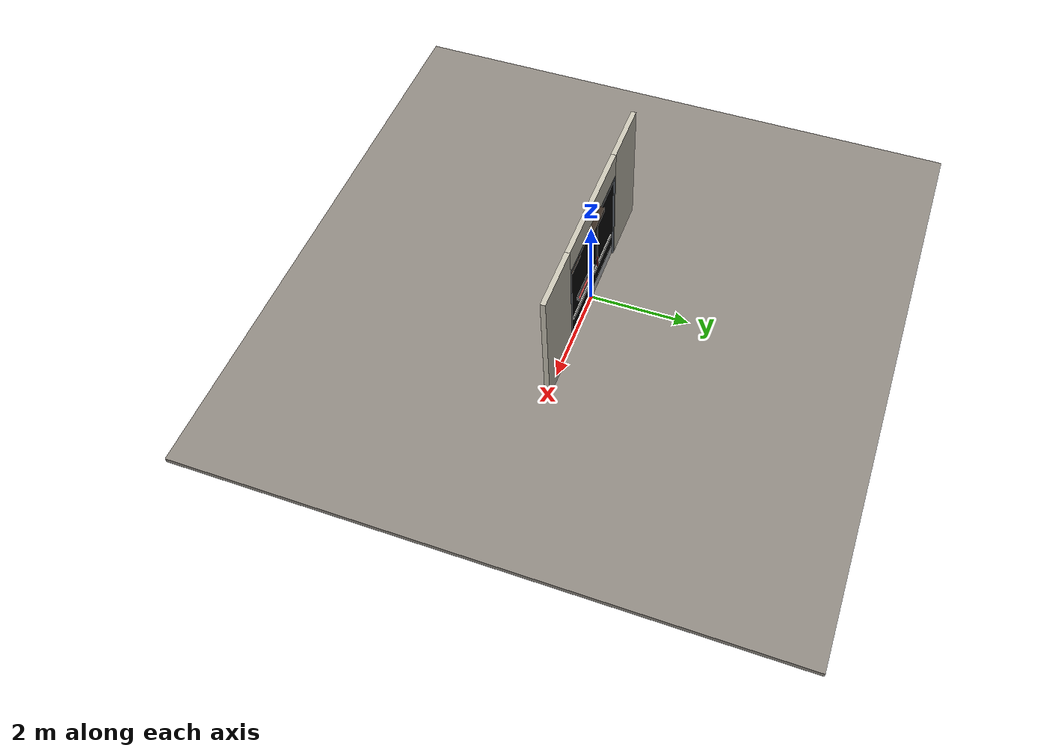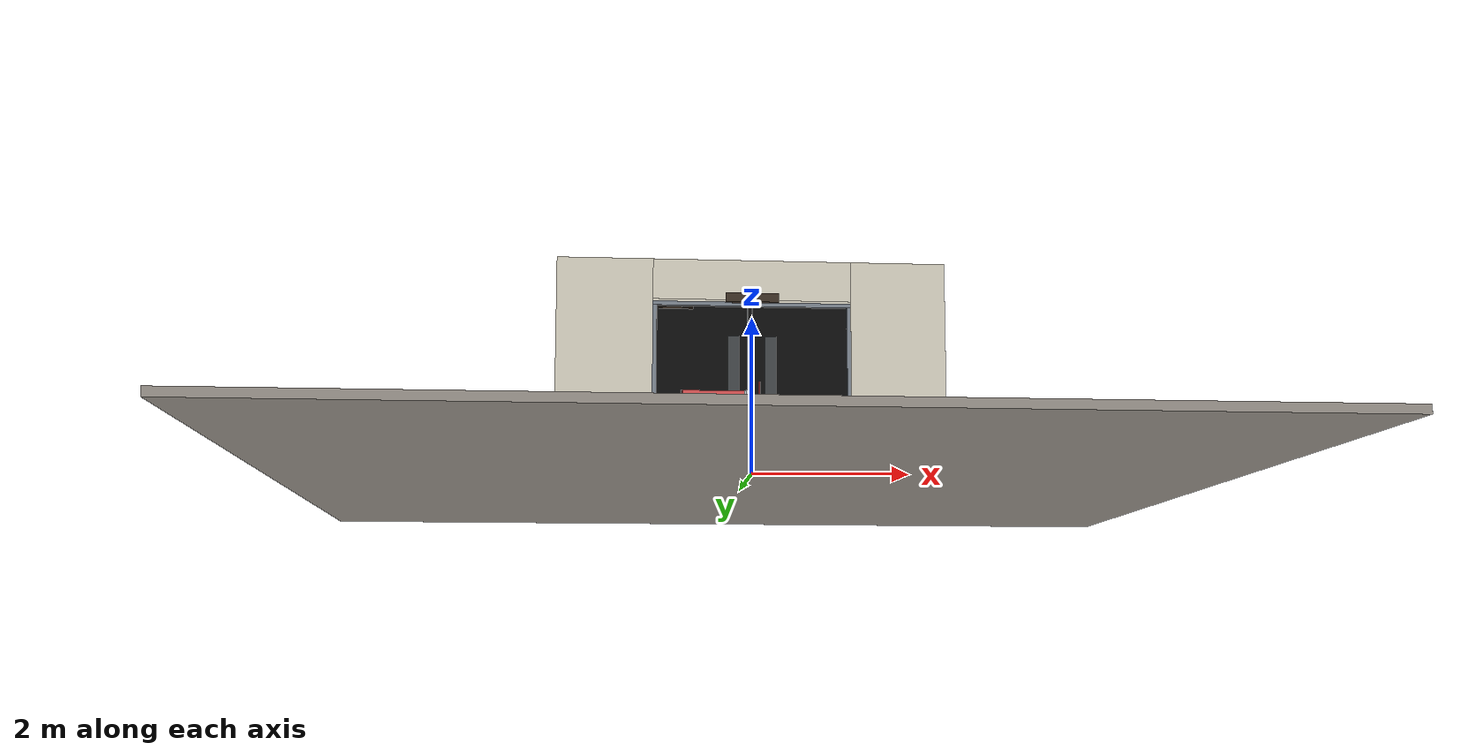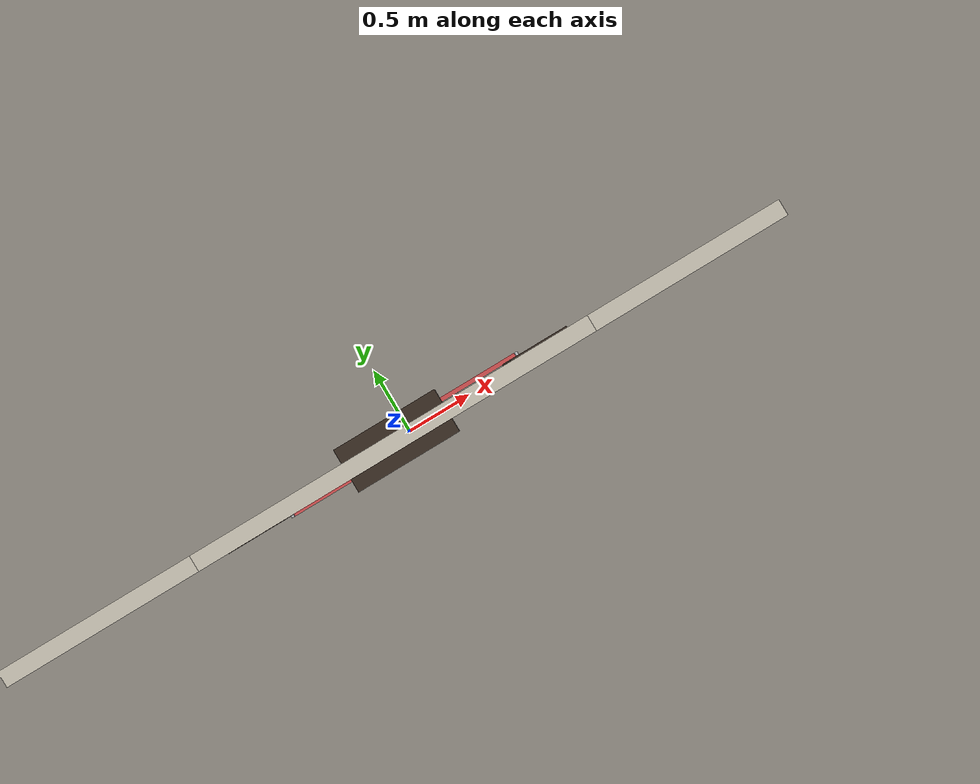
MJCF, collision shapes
<?xml version="1.0" ?>
<mujoco model="db0608_swing_double_full">
  <compiler angle="radian" meshdir="../../hardware" texturedir="../../textures" autolimits="true" inertiafromgeom="false"/>
  <option timestep="0.002" integrator="implicitfast" cone="elliptic" impratio="10" noslip_iterations="3">
    <flag multiccd="enable"/>
  </option>
  <size memory="16M"/>
  <default>
    <geom condim="4" solref="0.005 1" solimp="0.95 0.99 0.001"/>
    <joint solreflimit="0.005 1" solimplimit="0.95 0.99 0.001"/>
    <tendon solreflimit="0.005 1"/>
    <equality solref="0.002 1"/>
  </default>
  <visual>
    <headlight ambient="0.4 0.4 0.4" diffuse="0.7 0.7 0.7" specular="0.2 0.2 0.2"/>
    <quality shadowsize="4096"/>
    <map znear="0.01" zfar="60"/>
  </visual>
  <asset>
    <mesh name="hinge_1cb808d647" file="hinge_1cb808d647.obj"/>
    <mesh name="hinge_jamb_7842e12854" file="hinge_jamb_7842e12854.obj"/>
    <mesh name="pull_f8d79d6331" file="pull_f8d79d6331.obj"/>
    <mesh name="touchbar_pad_53c3d671cc" file="touchbar_pad_53c3d671cc.obj"/>
    <material name="mat_floor" rgba="0.55 0.53 0.5 1" specular="0.2" shininess="0.15" reflectance="0"/>
    <material name="mat_wall" rgba="0.78 0.76 0.7 1" specular="0.2" shininess="0.1" reflectance="0"/>
    <material name="mat_leaf_a" rgba="0.04 0.04 0.04 1" specular="0.2" shininess="0.38" reflectance="0"/>
    <material name="mat_glass" rgba="0.85 0.92 0.95 0.25" specular="0.2" shininess="0.95" reflectance="0.1"/>
    <material name="mat_hinge" rgba="0.65 0.66 0.68 1" specular="0.74" shininess="0.5" reflectance="0.36"/>
    <material name="mat_op_stainless" rgba="0.75 0.76 0.77 1" specular="0.8" shininess="0.65" reflectance="0.4"/>
    <material name="mat_bolt" rgba="0.75 0.76 0.77 1" specular="0.8" shininess="0.65" reflectance="0.4"/>
    <material name="mat_closer" rgba="0.22 0.17 0.13 1" specular="0.8" shininess="0.6" reflectance="0.4"/>
    <material name="mat_kick" rgba="0.75 0.76 0.77 1" specular="0.8" shininess="0.65" reflectance="0.4"/>
    <material name="mat_bumper" rgba="0.92 0.92 0.9 1" specular="0.2" shininess="0.6" reflectance="0"/>
    <material name="mat_leaf_b" rgba="0.04 0.04 0.04 1" specular="0.2" shininess="0.38" reflectance="0"/>
    <material name="mat_frame" rgba="0.45 0.48 0.52 1" specular="0.32" shininess="0.6" reflectance="0.08"/>
    <texture name="skybox" type="skybox" builtin="gradient" rgb1="0.6 0.7 0.85" rgb2="0.9 0.92 0.95" width="256" height="256"/>
  </asset>
  <worldbody>
    <light name="sun" pos="1.5 -2.5 4" dir="-0.3 0.5 -0.8" directional="true" diffuse="0.8 0.8 0.8" specular="0.3 0.3 0.3" castshadow="true"/>
    <light name="fill" pos="-1.5 2.5 3" dir="0.3 -0.5 -0.7" directional="true" diffuse="0.35 0.35 0.4" castshadow="false"/>
    <camera name="robot_view" pos="0 -2.919063 1.890837" xyaxes="1 0 0 0 0.26963 0.962964" fovy="52"/>
    <camera name="far_view" pos="0 2.919063 1.890837" xyaxes="-1 0 0 0 -0.26963 0.962964" fovy="52"/>
    <camera name="iso" pos="-2.218488 -2.452013 2.357888" xyaxes="0.741536 -0.670913 0 0.242917 0.268487 0.932151" fovy="46"/>
    <camera name="detail_handle" pos="0.0885 -0.703 1.296" xyaxes="0.97561 0.219512 0 -0.070934 0.315262 0.94635" fovy="38"/>
    <geom name="floor" type="box" size="6 6 0.05" pos="0 0 -0.05" material="mat_floor" group="0" contype="1" conaffinity="1" friction="0.8 0.005 0.0001" density="2400"/>
    <geom name="wall_left" type="box" size="0.61325 0.05 1.3735" pos="-1.88675 0 1.3735" material="mat_wall" group="0" contype="1" conaffinity="1" friction="0.6 0.005 0.0001" density="800"/>
    <geom name="wall_right" type="box" size="0.61325 0.05 1.3735" pos="1.88675 0 1.3735" material="mat_wall" group="0" contype="1" conaffinity="1" friction="0.6 0.005 0.0001" density="800"/>
    <geom name="wall_header" type="box" size="1.2735 0.05 0.26" pos="0 0 2.487" material="mat_wall" group="0" contype="1" conaffinity="1" friction="0.6 0.005 0.0001" density="800"/>
    <geom name="hinge_0_jamb" type="mesh" mesh="hinge_jamb_7842e12854" pos="-1.2205 0.029 0.266" quat="0 1 0 0" material="mat_hinge" group="1" contype="0" conaffinity="0" density="7850"/>
    <geom name="hinge_1_jamb" type="mesh" mesh="hinge_jamb_7842e12854" pos="-1.2205 0.029 1.0795" quat="0 1 0 0" material="mat_hinge" group="1" contype="0" conaffinity="0" density="7850"/>
    <geom name="hinge_2_jamb" type="mesh" mesh="hinge_jamb_7842e12854" pos="-1.2205 0.029 1.963" quat="0 1 0 0" material="mat_hinge" group="1" contype="0" conaffinity="0" density="7850"/>
    <geom name="leaf_a_bottom_strike_plate" type="box" size="0.0255 0.0255 0.00075" pos="-0.0615 0 0.00075" material="mat_bolt" group="0" contype="1" conaffinity="1" friction="0.6 0.005 0.0001" density="7850"/>
    <geom name="leaf_a_bottom_strike_p" type="box" size="0.0215 0.004 0.00575" pos="-0.0615 0.0145 0.00725" material="mat_bolt" group="0" contype="1" conaffinity="1" friction="0.6 0.005 0.0001" density="7850"/>
    <geom name="leaf_a_bottom_strike_n" type="box" size="0.0215 0.004 0.00575" pos="-0.0615 -0.0145 0.00725" material="mat_bolt" group="0" contype="1" conaffinity="1" friction="0.6 0.005 0.0001" density="7850"/>
    <geom name="leaf_a_bottom_strike_e" type="box" size="0.004 0.0215 0.00575" pos="-0.047 0 0.00725" material="mat_bolt" group="0" contype="1" conaffinity="1" friction="0.6 0.005 0.0001" density="7850"/>
    <geom name="auto_operator_header" type="box" size="0.34 0.055 0.055" pos="0 -0.087 2.242" material="mat_closer" group="0" contype="1" conaffinity="1" friction="0.6 0.005 0.0001" density="1500"/>
    <geom name="hinge_0_jamb_2" type="mesh" mesh="hinge_jamb_7842e12854" pos="1.2205 -0.029 0.266" quat="0 0 1 0" material="mat_hinge" group="1" contype="0" conaffinity="0" density="7850"/>
    <geom name="hinge_1_jamb_2" type="mesh" mesh="hinge_jamb_7842e12854" pos="1.2205 -0.029 1.0795" quat="0 0 1 0" material="mat_hinge" group="1" contype="0" conaffinity="0" density="7850"/>
    <geom name="hinge_2_jamb_2" type="mesh" mesh="hinge_jamb_7842e12854" pos="1.2205 -0.029 1.963" quat="0 0 1 0" material="mat_hinge" group="1" contype="0" conaffinity="0" density="7850"/>
    <geom name="leaf_b_bottom_strike_plate" type="box" size="0.0255 0.0255 0.00075" pos="0.0615 0 0.00075" material="mat_bolt" group="0" contype="1" conaffinity="1" friction="0.6 0.005 0.0001" density="7850"/>
    <geom name="leaf_b_bottom_strike_p" type="box" size="0.0215 0.004 0.00575" pos="0.0615 0.0145 0.00725" material="mat_bolt" group="0" contype="1" conaffinity="1" friction="0.6 0.005 0.0001" density="7850"/>
    <geom name="leaf_b_bottom_strike_n" type="box" size="0.0215 0.004 0.00575" pos="0.0615 -0.0145 0.00725" material="mat_bolt" group="0" contype="1" conaffinity="1" friction="0.6 0.005 0.0001" density="7850"/>
    <geom name="leaf_b_bottom_strike_e" type="box" size="0.004 0.0215 0.00575" pos="0.047 0 0.00725" material="mat_bolt" group="0" contype="1" conaffinity="1" friction="0.6 0.005 0.0001" density="7850"/>
    <geom name="auto_operator_header_2" type="box" size="0.34 0.055 0.055" pos="0 0.087 2.242" material="mat_closer" group="0" contype="1" conaffinity="1" friction="0.6 0.005 0.0001" density="1500"/>
    <geom name="jamb_l" type="box" size="0.025 0.05 1.0735" pos="-1.2485 0 1.0735" material="mat_frame" group="0" contype="1" conaffinity="1" friction="0.6 0.005 0.0001" density="300"/>
    <geom name="jamb_r" type="box" size="0.025 0.05 1.0735" pos="1.2485 0 1.0735" material="mat_frame" group="0" contype="1" conaffinity="1" friction="0.6 0.005 0.0001" density="300"/>
    <geom name="jamb_head_pwall_-61_n" type="box" size="0.0135 0.0195 0.025" pos="-0.0615 -0.0305 2.172" material="mat_frame" group="0" contype="1" conaffinity="1" friction="0.6 0.005 0.0001" density="300"/>
    <geom name="jamb_head_pwall_-61_p" type="box" size="0.0135 0.0195 0.025" pos="-0.0615 0.0305 2.172" material="mat_frame" group="0" contype="1" conaffinity="1" friction="0.6 0.005 0.0001" density="300"/>
    <geom name="jamb_head_pback_-61" type="box" size="0.0135 0.011 0.0135" pos="-0.0615 0 2.1835" material="mat_frame" group="0" contype="1" conaffinity="1" friction="0.6 0.005 0.0001" density="300"/>
    <geom name="jamb_head_pwall_61_n" type="box" size="0.0135 0.0195 0.025" pos="0.0615 -0.0305 2.172" material="mat_frame" group="0" contype="1" conaffinity="1" friction="0.6 0.005 0.0001" density="300"/>
    <geom name="jamb_head_pwall_61_p" type="box" size="0.0135 0.0195 0.025" pos="0.0615 0.0305 2.172" material="mat_frame" group="0" contype="1" conaffinity="1" friction="0.6 0.005 0.0001" density="300"/>
    <geom name="jamb_head_pback_61" type="box" size="0.0135 0.011 0.0135" pos="0.0615 0 2.1835" material="mat_frame" group="0" contype="1" conaffinity="1" friction="0.6 0.005 0.0001" density="300"/>
    <geom name="jamb_head_0" type="box" size="0.59925 0.05 0.025" pos="-0.67425 0 2.172" material="mat_frame" group="0" contype="1" conaffinity="1" friction="0.6 0.005 0.0001" density="300"/>
    <geom name="jamb_head_1" type="box" size="0.048 0.05 0.025" pos="0 0 2.172" material="mat_frame" group="0" contype="1" conaffinity="1" friction="0.6 0.005 0.0001" density="300"/>
    <geom name="jamb_head_2" type="box" size="0.59925 0.05 0.025" pos="0.67425 0 2.172" material="mat_frame" group="0" contype="1" conaffinity="1" friction="0.6 0.005 0.0001" density="300"/>
    <geom name="head_stud" type="box" size="1.2735 0.05 0.015" pos="0 0 2.212" material="mat_wall" group="0" contype="1" conaffinity="1" friction="0.6 0.005 0.0001" density="500"/>
    <site name="approach_point" pos="0 -1.5 0" quat="1 0 0 0" size="0.05" rgba="0.2 0.9 0.2 0.5" group="4"/>
    <site name="goal_point" pos="0 1.5 0" quat="1 0 0 0" size="0.05" rgba="0.2 0.9 0.2 0.5" group="4"/>
    <site name="door_plane_center" pos="0 0 1.0735" quat="1 0 0 0" size="0.02" rgba="0.2 0.9 0.2 0.5" group="4"/>
    <site name="approach_point_2" pos="0 -1.5 0" quat="1 0 0 0" size="0.05" rgba="0.2 0.9 0.2 0.5" group="4"/>
    <site name="goal_point_2" pos="0 1.5 0" quat="1 0 0 0" size="0.05" rgba="0.2 0.9 0.2 0.5" group="4"/>
    <site name="door_plane_center_2" pos="0 0 1.0735" quat="1 0 0 0" size="0.02" rgba="0.2 0.9 0.2 0.5" group="4"/>
    <site name="approach_point_3" pos="0 -1.5 0" quat="1 0 0 0" size="0.05" rgba="0.2 0.9 0.2 0.5" group="4"/>
    <site name="goal_point_3" pos="0 1.5 0" quat="1 0 0 0" size="0.05" rgba="0.2 0.9 0.2 0.5" group="4"/>
    <site name="door_plane_center_3" pos="0 0 1.0735" quat="1 0 0 0" size="0.02" rgba="0.2 0.9 0.2 0.5" group="4"/>
    <body name="leaf_a" pos="-1.2235 0 0">
      <inertial pos="0.638488 -0.001741 0.998241" mass="88.473671" quat="0.500363 0.498355 -0.502102 0.499171" diaginertia="11.582764009 34.283940679 45.787500678"/>
      <joint name="leaf_a_hinge" type="hinge" axis="0 0 1" pos="0.003 0.029 0" limited="true" range="0 1.570796" solreflimit="0.02 1" damping="15.850995" frictionloss="6.157325" stiffness="30.570481" springref="-2.15502" armature="0.02"/>
      <geom name="leaf_a_slab" type="box" size="0.6095 0.022 1.0635" pos="0.6125 0 1.0795" material="mat_leaf_a" group="0" contype="1" conaffinity="1" friction="0.35 0.005 0.0001" density="1"/>
      <geom name="leaf_a_glass_0" type="box" size="0.075 0.0228 0.4254" pos="0.98291 0 1.33474" material="mat_glass" group="1" contype="0" conaffinity="0" density="1"/>
      <geom name="hinge_0" type="mesh" mesh="hinge_1cb808d647" pos="0.003 0.029 0.266" quat="0 1 0 0" material="mat_hinge" group="1" contype="0" conaffinity="0" density="7850"/>
      <geom name="hinge_1" type="mesh" mesh="hinge_1cb808d647" pos="0.003 0.029 1.0795" quat="0 1 0 0" material="mat_hinge" group="1" contype="0" conaffinity="0" density="7850"/>
      <geom name="hinge_2" type="mesh" mesh="hinge_1cb808d647" pos="0.003 0.029 1.963" quat="0 1 0 0" material="mat_hinge" group="1" contype="0" conaffinity="0" density="7850"/>
      <geom name="leaf_a_exit_device_rail" type="box" size="0.416175 0.006 0.025" pos="0.725825 -0.028 1.016" material="mat_op_stainless" group="0" contype="1" conaffinity="1" friction="0.6 0.005 0.0001" density="3000"/>
      <geom name="leaf_a_exit_device_rail_end_n" type="box" size="0.01 0.0325 0.025" pos="0.31965 -0.0545 1.016" material="mat_op_stainless" group="0" contype="1" conaffinity="1" friction="0.6 0.005 0.0001" density="3000"/>
      <geom name="leaf_a_exit_device_rail_end_p" type="box" size="0.01 0.0325 0.025" pos="1.132 -0.0545 1.016" material="mat_op_stainless" group="0" contype="1" conaffinity="1" friction="0.6 0.005 0.0001" density="3000"/>
      <geom name="leaf_a_exit_device_case" type="box" size="0.025 0.034125 0.0375" pos="1.167 -0.056125 1.016" material="mat_op_stainless" group="0" contype="1" conaffinity="1" friction="0.6 0.005 0.0001" density="3000"/>
      <geom name="leaf_a_exit_device_rod_top" type="cylinder" size="0.008 0.52975" pos="1.162 -0.052 1.58325" material="mat_op_stainless" group="1" contype="0" conaffinity="0" density="7850"/>
      <geom name="leaf_a_exit_device_rod_bot" type="cylinder" size="0.008 0.46625" pos="1.162 -0.052 0.51225" material="mat_op_stainless" group="1" contype="0" conaffinity="0" density="7850"/>
      <geom name="leaf_a_far_pull_p" type="mesh" mesh="pull_f8d79d6331" pos="1.132 0.022 1.016" quat="-0.707107 0.707107 0 0" material="mat_op_stainless" group="1" contype="0" conaffinity="0" density="3000"/>
      <geom name="leaf_a_far_pull_col_p" type="capsule" size="0.0125 0.13" pos="1.132 0.097 1.016" material="mat_op_stainless" group="3" contype="1" conaffinity="1" rgba="0.8 0.3 0.3 0.25" friction="0.7 0.01 0.0001" density="3000"/>
      <geom name="auto_operator_arm" type="box" size="0.22 0.008 0.008" pos="0.25 -0.052 2.107" material="mat_closer" group="1" contype="0" conaffinity="0" density="2700"/>
      <geom name="auto_operator_arm_shoe" type="box" size="0.03 0.016 0.014" pos="0.44 -0.038 2.107" material="mat_closer" group="1" contype="0" conaffinity="0" density="2700"/>
      <geom name="kick_plate_n" type="box" size="0.5795 0.0008 0.125" pos="0.6125 -0.0228 0.151" material="mat_kick" group="2" contype="0" conaffinity="0" density="7900"/>
      <geom name="kick_plate_p" type="box" size="0.5795 0.0008 0.125" pos="0.6125 0.0228 0.151" material="mat_kick" group="2" contype="0" conaffinity="0" density="7900"/>
      <geom name="bumper_rail_n" type="box" size="0.5245 0.01 0.04" pos="0.6475 -0.032 0.666" material="mat_bumper" group="0" contype="1" conaffinity="1" friction="0.6 0.005 0.0001" density="1200"/>
      <geom name="bumper_rail_p" type="box" size="0.5245 0.01 0.04" pos="0.6475 0.032 0.666" material="mat_bumper" group="0" contype="1" conaffinity="1" friction="0.6 0.005 0.0001" density="1200"/>
      <site name="leaf_a_far_pull_grip_p" pos="1.132 0.097 1.016" quat="1 0 0 0" size="0.012" rgba="0.2 0.9 0.2 0.5" group="4"/>
      <site name="leaf_a_edge_mid" pos="1.222 0 1.0635" quat="1 0 0 0" size="0.02" rgba="0.2 0.9 0.2 0.5" group="4"/>
      <body name="leaf_a_exit_device" pos="0.725825 -0.022 1.016">
        <inertial pos="0 -0.05 0" mass="6.369435" quat="0 0 0.707107 0.707107" diaginertia="0.00155255 0.328687433 0.329284568"/>
        <joint name="leaf_a_exit_device_slide" type="slide" axis="0 1 0" limited="true" range="0 0.016" damping="191.072855" frictionloss="0.5" stiffness="1400" springref="-0.015714" armature="0.15"/>
        <geom name="leaf_a_exit_device_pad" type="mesh" mesh="touchbar_pad_53c3d671cc" pos="0 0 0" quat="0.707107 0.707107 0 0" material="mat_op_stainless" group="1" contype="0" conaffinity="0" density="3000"/>
        <geom name="leaf_a_exit_device_pad_col" type="box" size="0.393175 0.015 0.0225" pos="0 -0.05 0" material="mat_op_stainless" group="3" contype="1" conaffinity="1" rgba="0.8 0.3 0.3 0.25" friction="0.8 0.01 0.0001" density="3000"/>
        <site name="leaf_a_exit_device_push" pos="0 -0.065 0" quat="1 0 0 0" size="0.015" rgba="0.2 0.9 0.2 0.5" group="4"/>
      </body>
      <body name="leaf_a_top_latch" pos="1.162 0 2.143">
        <inertial pos="0 0 -0.0155" mass="0.151026" quat="0.707107 0 0.707107 0" diaginertia="0.00000654 0.000053442 0.000053442"/>
        <joint name="leaf_a_top_latch_slide" type="slide" axis="0 0 -1" limited="true" range="0 0.019" damping="2" frictionloss="0.3" stiffness="800" springref="-0.01" armature="0.1"/>
        <geom name="leaf_a_top_latch_capsule" type="capsule" size="0.0095 0.025" pos="0 0 -0.0155" material="mat_bolt" group="0" contype="1" conaffinity="1" friction="0.2 0.005 0.0001" density="8500"/>
      </body>
      <body name="leaf_a_bottom_latch" pos="1.162 0 0.03">
        <inertial pos="0 0 0.012" mass="0.167896" quat="0.707107 0 0.707107 0" diaginertia="0.000007301 0.000072388 0.000072388"/>
        <joint name="leaf_a_bottom_latch_slide" type="slide" axis="0 0 1" limited="true" range="0 0.026" damping="2" frictionloss="0.3" stiffness="800" springref="-0.01" armature="0.1"/>
        <geom name="leaf_a_bottom_latch_capsule" type="capsule" size="0.0095 0.0285" pos="0 0 0.012" material="mat_bolt" group="0" contype="1" conaffinity="1" friction="0.2 0.005 0.0001" density="8500"/>
      </body>
    </body>
    <body name="leaf_b" pos="1.2235 0 0">
      <inertial pos="-0.638488 0.001741 0.998241" mass="88.473671" quat="0.500363 -0.498355 0.502102 0.499171" diaginertia="11.582764009 34.283940679 45.787500678"/>
      <joint name="leaf_b_hinge" type="hinge" axis="0 0 1" pos="-0.003 -0.029 0" limited="true" range="0 1.570796" solreflimit="0.02 1" damping="15.850995" frictionloss="6.157325" stiffness="30.570481" springref="-2.15502" armature="0.02"/>
      <geom name="leaf_b_slab" type="box" size="0.6095 0.022 1.0635" pos="-0.6125 0 1.0795" material="mat_leaf_b" group="0" contype="1" conaffinity="1" friction="0.35 0.005 0.0001" density="1"/>
      <geom name="leaf_b_glass_0" type="box" size="0.075 0.0228 0.4254" pos="-0.98291 0 1.33474" material="mat_glass" group="1" contype="0" conaffinity="0" density="1"/>
      <geom name="hinge_0_2" type="mesh" mesh="hinge_1cb808d647" pos="-0.003 -0.029 0.266" quat="0 0 1 0" material="mat_hinge" group="1" contype="0" conaffinity="0" density="7850"/>
      <geom name="hinge_1_2" type="mesh" mesh="hinge_1cb808d647" pos="-0.003 -0.029 1.0795" quat="0 0 1 0" material="mat_hinge" group="1" contype="0" conaffinity="0" density="7850"/>
      <geom name="hinge_2_2" type="mesh" mesh="hinge_1cb808d647" pos="-0.003 -0.029 1.963" quat="0 0 1 0" material="mat_hinge" group="1" contype="0" conaffinity="0" density="7850"/>
      <geom name="leaf_b_exit_device_rail" type="box" size="0.416175 0.006 0.025" pos="-0.725825 0.028 1.016" material="mat_op_stainless" group="0" contype="1" conaffinity="1" friction="0.6 0.005 0.0001" density="3000"/>
      <geom name="leaf_b_exit_device_rail_end_n" type="box" size="0.01 0.0325 0.025" pos="-1.132 0.0545 1.016" material="mat_op_stainless" group="0" contype="1" conaffinity="1" friction="0.6 0.005 0.0001" density="3000"/>
      <geom name="leaf_b_exit_device_rail_end_p" type="box" size="0.01 0.0325 0.025" pos="-0.31965 0.0545 1.016" material="mat_op_stainless" group="0" contype="1" conaffinity="1" friction="0.6 0.005 0.0001" density="3000"/>
      <geom name="leaf_b_exit_device_case" type="box" size="0.025 0.034125 0.0375" pos="-1.167 0.056125 1.016" material="mat_op_stainless" group="0" contype="1" conaffinity="1" friction="0.6 0.005 0.0001" density="3000"/>
      <geom name="leaf_b_exit_device_rod_top" type="cylinder" size="0.008 0.52975" pos="-1.162 0.052 1.58325" material="mat_op_stainless" group="1" contype="0" conaffinity="0" density="7850"/>
      <geom name="leaf_b_exit_device_rod_bot" type="cylinder" size="0.008 0.46625" pos="-1.162 0.052 0.51225" material="mat_op_stainless" group="1" contype="0" conaffinity="0" density="7850"/>
      <geom name="leaf_b_far_pull_n" type="mesh" mesh="pull_f8d79d6331" pos="-1.132 -0.022 1.016" quat="0 0 -0.707107 0.707107" material="mat_op_stainless" group="1" contype="0" conaffinity="0" density="3000"/>
      <geom name="leaf_b_far_pull_col_n" type="capsule" size="0.0125 0.13" pos="-1.132 -0.097 1.016" material="mat_op_stainless" group="3" contype="1" conaffinity="1" rgba="0.8 0.3 0.3 0.25" friction="0.7 0.01 0.0001" density="3000"/>
      <geom name="auto_operator_arm_2" type="box" size="0.22 0.008 0.008" pos="-0.25 0.052 2.107" material="mat_closer" group="1" contype="0" conaffinity="0" density="2700"/>
      <geom name="auto_operator_arm_shoe_2" type="box" size="0.03 0.016 0.014" pos="-0.44 0.038 2.107" material="mat_closer" group="1" contype="0" conaffinity="0" density="2700"/>
      <geom name="kick_plate_n_2" type="box" size="0.5795 0.0008 0.125" pos="-0.6125 -0.0228 0.151" material="mat_kick" group="2" contype="0" conaffinity="0" density="7900"/>
      <geom name="kick_plate_p_2" type="box" size="0.5795 0.0008 0.125" pos="-0.6125 0.0228 0.151" material="mat_kick" group="2" contype="0" conaffinity="0" density="7900"/>
      <geom name="bumper_rail_n_2" type="box" size="0.5245 0.01 0.04" pos="-0.6475 -0.032 0.666" material="mat_bumper" group="0" contype="1" conaffinity="1" friction="0.6 0.005 0.0001" density="1200"/>
      <geom name="bumper_rail_p_2" type="box" size="0.5245 0.01 0.04" pos="-0.6475 0.032 0.666" material="mat_bumper" group="0" contype="1" conaffinity="1" friction="0.6 0.005 0.0001" density="1200"/>
      <site name="leaf_b_far_pull_grip_n" pos="-1.132 -0.097 1.016" quat="1 0 0 0" size="0.012" rgba="0.2 0.9 0.2 0.5" group="4"/>
      <site name="leaf_b_edge_mid" pos="-1.222 0 1.0635" quat="1 0 0 0" size="0.02" rgba="0.2 0.9 0.2 0.5" group="4"/>
      <body name="leaf_b_exit_device" pos="-0.725825 0.022 1.016">
        <inertial pos="0 0.05 0" mass="6.369435" quat="0 0 0.707107 0.707107" diaginertia="0.00155255 0.328687433 0.329284568"/>
        <joint name="leaf_b_exit_device_slide" type="slide" axis="0 -1 0" limited="true" range="0 0.016" damping="191.072855" frictionloss="0.5" stiffness="1400" springref="-0.015714" armature="0.15"/>
        <geom name="leaf_b_exit_device_pad" type="mesh" mesh="touchbar_pad_53c3d671cc" pos="0 0 0" quat="0 0 0.707107 0.707107" material="mat_op_stainless" group="1" contype="0" conaffinity="0" density="3000"/>
        <geom name="leaf_b_exit_device_pad_col" type="box" size="0.393175 0.015 0.0225" pos="0 0.05 0" material="mat_op_stainless" group="3" contype="1" conaffinity="1" rgba="0.8 0.3 0.3 0.25" friction="0.8 0.01 0.0001" density="3000"/>
        <site name="leaf_b_exit_device_push" pos="0 0.065 0" quat="1 0 0 0" size="0.015" rgba="0.2 0.9 0.2 0.5" group="4"/>
      </body>
      <body name="leaf_b_top_latch" pos="-1.162 0 2.143">
        <inertial pos="0 0 -0.0155" mass="0.151026" quat="0.707107 0 0.707107 0" diaginertia="0.00000654 0.000053442 0.000053442"/>
        <joint name="leaf_b_top_latch_slide" type="slide" axis="0 0 -1" limited="true" range="0 0.019" damping="2" frictionloss="0.3" stiffness="800" springref="-0.01" armature="0.1"/>
        <geom name="leaf_b_top_latch_capsule" type="capsule" size="0.0095 0.025" pos="0 0 -0.0155" material="mat_bolt" group="0" contype="1" conaffinity="1" friction="0.2 0.005 0.0001" density="8500"/>
      </body>
      <body name="leaf_b_bottom_latch" pos="-1.162 0 0.03">
        <inertial pos="0 0 0.012" mass="0.167896" quat="0.707107 0 0.707107 0" diaginertia="0.000007301 0.000072388 0.000072388"/>
        <joint name="leaf_b_bottom_latch_slide" type="slide" axis="0 0 1" limited="true" range="0 0.026" damping="2" frictionloss="0.3" stiffness="800" springref="-0.01" armature="0.1"/>
        <geom name="leaf_b_bottom_latch_capsule" type="capsule" size="0.0095 0.0285" pos="0 0 0.012" material="mat_bolt" group="0" contype="1" conaffinity="1" friction="0.2 0.005 0.0001" density="8500"/>
      </body>
    </body>
  </worldbody>
  <tendon>
    <fixed name="leaf_a_top_latch_coupling" limited="true" range="0 10">
      <joint joint="leaf_a_top_latch_slide" coef="1"/>
      <joint joint="leaf_a_exit_device_slide" coef="-1.142857"/>
    </fixed>
    <fixed name="leaf_a_bottom_latch_coupling" limited="true" range="0 10">
      <joint joint="leaf_a_bottom_latch_slide" coef="1"/>
      <joint joint="leaf_a_exit_device_slide" coef="-1.56391"/>
    </fixed>
    <fixed name="leaf_b_top_latch_coupling" limited="true" range="0 10">
      <joint joint="leaf_b_top_latch_slide" coef="1"/>
      <joint joint="leaf_b_exit_device_slide" coef="-1.142857"/>
    </fixed>
    <fixed name="leaf_b_bottom_latch_coupling" limited="true" range="0 10">
      <joint joint="leaf_b_bottom_latch_slide" coef="1"/>
      <joint joint="leaf_b_exit_device_slide" coef="-1.56391"/>
    </fixed>
  </tendon>
  <sensor>
    <jointpos name="leaf_a_hinge_pos" joint="leaf_a_hinge"/>
    <jointvel name="leaf_a_hinge_vel" joint="leaf_a_hinge"/>
    <jointpos name="leaf_a_exit_device_slide_pos" joint="leaf_a_exit_device_slide"/>
    <jointvel name="leaf_a_exit_device_slide_vel" joint="leaf_a_exit_device_slide"/>
    <jointpos name="leaf_a_top_latch_slide_pos" joint="leaf_a_top_latch_slide"/>
    <jointvel name="leaf_a_top_latch_slide_vel" joint="leaf_a_top_latch_slide"/>
    <jointpos name="leaf_a_bottom_latch_slide_pos" joint="leaf_a_bottom_latch_slide"/>
    <jointvel name="leaf_a_bottom_latch_slide_vel" joint="leaf_a_bottom_latch_slide"/>
    <jointpos name="leaf_b_hinge_pos" joint="leaf_b_hinge"/>
    <jointvel name="leaf_b_hinge_vel" joint="leaf_b_hinge"/>
    <jointpos name="leaf_b_exit_device_slide_pos" joint="leaf_b_exit_device_slide"/>
    <jointvel name="leaf_b_exit_device_slide_vel" joint="leaf_b_exit_device_slide"/>
    <jointpos name="leaf_b_top_latch_slide_pos" joint="leaf_b_top_latch_slide"/>
    <jointvel name="leaf_b_top_latch_slide_vel" joint="leaf_b_top_latch_slide"/>
    <jointpos name="leaf_b_bottom_latch_slide_pos" joint="leaf_b_bottom_latch_slide"/>
    <jointvel name="leaf_b_bottom_latch_slide_vel" joint="leaf_b_bottom_latch_slide"/>
  </sensor>
</mujoco>
